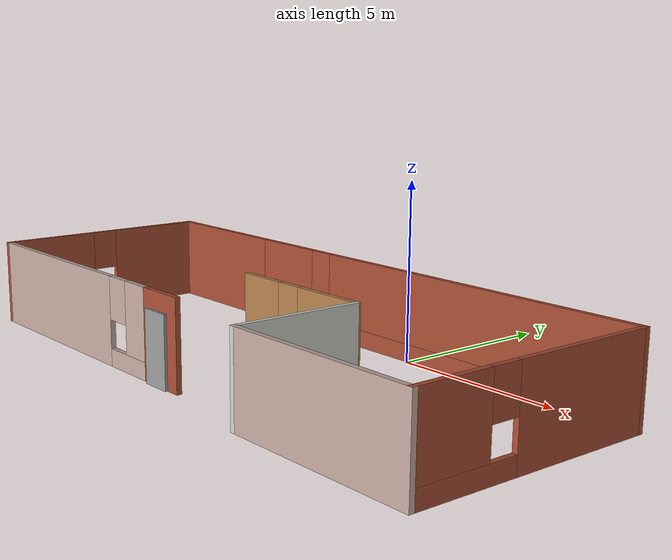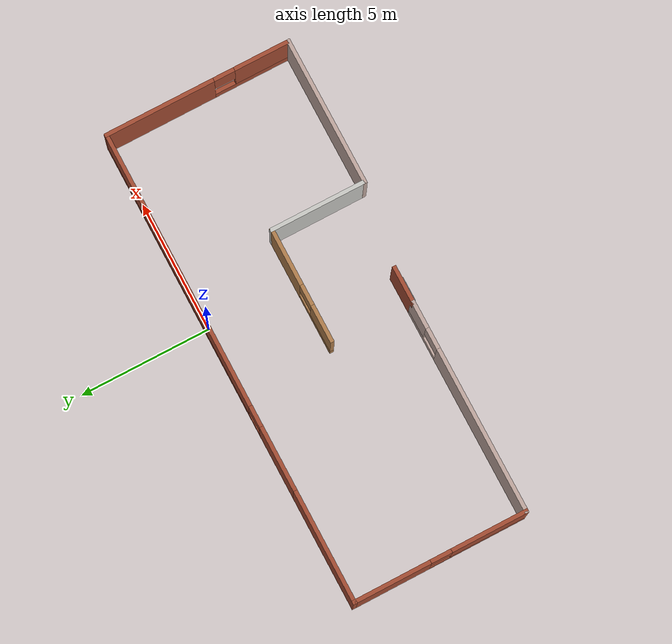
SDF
<?xml version='1.0'?>
<sdf version='1.6'>
  <model name='building'>
    <pose frame=''>-1.80267 -3.45092 0 0 -0 0</pose>
    <link name='Door_0'>
      <collision name='Door_0_Collision'>
        <geometry>
          <box>
            <size>0.9 0.17 2</size>
          </box>
        </geometry>
        <pose frame=''>0 0 1 0 -0 0</pose>
      </collision>
      <visual name='Door_0_Visual'>
        <pose frame=''>0 0 1 0 -0 0</pose>
        <geometry>
          <box>
            <size>0.9 0.17 2</size>
          </box>
        </geometry>
        <material>
          <script>
            <uri>file://media/materials/scripts/gazebo.material</uri>
            <name>Gazebo/Grey</name>
          </script>
        </material>
      </visual>
      <pose frame=''>-0.447336 -3.11363 0 0 -0 0</pose>
    </link>
    <link name='Wall_0'>
      <pose frame=''>2.17489 3.55 0 0 0 -1.2e-05</pose>
      <visual name='Wall_0_Visual_0'>
        <pose frame=''>-5.76323 0 1.25 0 -0 0</pose>
        <geometry>
          <box>
            <size>2.47354 0.15 2.5</size>
          </box>
        </geometry>
        <material>
          <script>
            <uri>file://media/materials/scripts/gazebo.material</uri>
            <name>Gazebo/Bricks</name>
          </script>
          <ambient>1 1 1 1</ambient>
        </material>
        <meta>
          <layer>0</layer>
        </meta>
      </visual>
      <collision name='Wall_0_Collision_0'>
        <geometry>
          <box>
            <size>2.47354 0.15 2.5</size>
          </box>
        </geometry>
        <pose frame=''>-5.76323 0 1.25 0 -0 0</pose>
      </collision>
      <visual name='Wall_0_Visual_1'>
        <pose frame=''>1.23677 0 0.25 0 -0 0</pose>
        <geometry>
          <box>
            <size>11.5265 0.15 0.5</size>
          </box>
        </geometry>
        <material>
          <script>
            <uri>file://media/materials/scripts/gazebo.material</uri>
            <name>Gazebo/Bricks</name>
          </script>
          <ambient>1 1 1 1</ambient>
        </material>
        <meta>
          <layer>0</layer>
        </meta>
      </visual>
      <collision name='Wall_0_Collision_1'>
        <geometry>
          <box>
            <size>11.5265 0.15 0.5</size>
          </box>
        </geometry>
        <pose frame=''>1.23677 0 0.25 0 -0 0</pose>
      </collision>
      <visual name='Wall_0_Visual_2'>
        <pose frame=''>1.63677 0 1.5 0 -0 0</pose>
        <geometry>
          <box>
            <size>10.7265 0.15 2</size>
          </box>
        </geometry>
        <material>
          <script>
            <uri>file://media/materials/scripts/gazebo.material</uri>
            <name>Gazebo/Bricks</name>
          </script>
          <ambient>1 1 1 1</ambient>
        </material>
        <meta>
          <layer>0</layer>
        </meta>
      </visual>
      <collision name='Wall_0_Collision_2'>
        <geometry>
          <box>
            <size>10.7265 0.15 2</size>
          </box>
        </geometry>
        <pose frame=''>1.63677 0 1.5 0 -0 0</pose>
      </collision>
      <visual name='Wall_0_Visual_3'>
        <pose frame=''>-4.12646 0 1.9 0 -0 0</pose>
        <geometry>
          <box>
            <size>0.8 0.15 1.2</size>
          </box>
        </geometry>
        <material>
          <script>
            <uri>file://media/materials/scripts/gazebo.material</uri>
            <name>Gazebo/Bricks</name>
          </script>
          <ambient>1 1 1 1</ambient>
        </material>
        <meta>
          <layer>0</layer>
        </meta>
      </visual>
      <collision name='Wall_0_Collision_3'>
        <geometry>
          <box>
            <size>0.8 0.15 1.2</size>
          </box>
        </geometry>
        <pose frame=''>-4.12646 0 1.9 0 -0 0</pose>
      </collision>
    </link>
    <link name='Wall_1'>
      <pose frame=''>9.09967 -8e-05 0 0 0 -1.5708</pose>
      <visual name='Wall_1_Visual_0'>
        <pose frame=''>-1.50505 0 1.25 0 -0 0</pose>
        <geometry>
          <box>
            <size>4.23991 0.15 2.5</size>
          </box>
        </geometry>
        <material>
          <script>
            <uri>file://media/materials/scripts/gazebo.material</uri>
            <name>Gazebo/Bricks</name>
          </script>
          <ambient>0.435294 0.796078 0.67451 1</ambient>
        </material>
        <meta>
          <layer>0</layer>
        </meta>
      </visual>
      <collision name='Wall_1_Collision_0'>
        <geometry>
          <box>
            <size>4.23991 0.15 2.5</size>
          </box>
        </geometry>
        <pose frame=''>-1.50505 0 1.25 0 -0 0</pose>
      </collision>
      <visual name='Wall_1_Visual_1'>
        <pose frame=''>2.11995 0 0.25 0 -0 0</pose>
        <geometry>
          <box>
            <size>3.01009 0.15 0.5</size>
          </box>
        </geometry>
        <material>
          <script>
            <uri>file://media/materials/scripts/gazebo.material</uri>
            <name>Gazebo/Bricks</name>
          </script>
          <ambient>0.435294 0.796078 0.67451 1</ambient>
        </material>
        <meta>
          <layer>0</layer>
        </meta>
      </visual>
      <collision name='Wall_1_Collision_1'>
        <geometry>
          <box>
            <size>3.01009 0.15 0.5</size>
          </box>
        </geometry>
        <pose frame=''>2.11995 0 0.25 0 -0 0</pose>
      </collision>
      <visual name='Wall_1_Visual_2'>
        <pose frame=''>2.51995 0 1.5 0 -0 0</pose>
        <geometry>
          <box>
            <size>2.21009 0.15 2</size>
          </box>
        </geometry>
        <material>
          <script>
            <uri>file://media/materials/scripts/gazebo.material</uri>
            <name>Gazebo/Bricks</name>
          </script>
          <ambient>0.435294 0.796078 0.67451 1</ambient>
        </material>
        <meta>
          <layer>0</layer>
        </meta>
      </visual>
      <collision name='Wall_1_Collision_2'>
        <geometry>
          <box>
            <size>2.21009 0.15 2</size>
          </box>
        </geometry>
        <pose frame=''>2.51995 0 1.5 0 -0 0</pose>
      </collision>
      <visual name='Wall_1_Visual_3'>
        <pose frame=''>1.01491 0 1.9 0 -0 0</pose>
        <geometry>
          <box>
            <size>0.8 0.15 1.2</size>
          </box>
        </geometry>
        <material>
          <script>
            <uri>file://media/materials/scripts/gazebo.material</uri>
            <name>Gazebo/Bricks</name>
          </script>
          <ambient>0.435294 0.796078 0.67451 1</ambient>
        </material>
        <meta>
          <layer>0</layer>
        </meta>
      </visual>
      <collision name='Wall_1_Collision_3'>
        <geometry>
          <box>
            <size>0.8 0.15 1.2</size>
          </box>
        </geometry>
        <pose frame=''>1.01491 0 1.9 0 -0 0</pose>
      </collision>
    </link>
    <link name='Wall_10'>
      <collision name='Wall_10_Collision'>
        <geometry>
          <box>
            <size>1.5 0.15 2.5</size>
          </box>
        </geometry>
        <pose frame=''>0 0 1.25 0 -0 0</pose>
      </collision>
      <visual name='Wall_10_Visual'>
        <pose frame=''>0 0 1.25 0 -0 0</pose>
        <geometry>
          <box>
            <size>1.5 0.15 2.5</size>
          </box>
        </geometry>
        <material>
          <script>
            <uri>file://media/materials/scripts/gazebo.material</uri>
            <name>Gazebo/Bricks</name>
          </script>
          <ambient>1 1 1 1</ambient>
        </material>
        <meta>
          <layer>0</layer>
        </meta>
      </visual>
      <pose frame=''>-0.324891 -3.04992 0 0 -0 0</pose>
    </link>
    <link name='Wall_2'>
      <collision name='Wall_2_Collision'>
        <geometry>
          <box>
            <size>5.75 0.15 2.5</size>
          </box>
        </geometry>
        <pose frame=''>0 0 1.25 0 -0 0</pose>
      </collision>
      <visual name='Wall_2_Visual'>
        <pose frame=''>0 0 1.25 0 -0 0</pose>
        <geometry>
          <box>
            <size>5.75 0.15 2.5</size>
          </box>
        </geometry>
        <material>
          <script>
            <uri>file://media/materials/scripts/gazebo.material</uri>
            <name>Gazebo/Grey</name>
          </script>
          <ambient>0.760784 0.662745 0.627451 1</ambient>
        </material>
        <meta>
          <layer>0</layer>
        </meta>
      </visual>
      <pose frame=''>6.29989 -3.55 0 0 -0 3.14156</pose>
    </link>
    <link name='Wall_3'>
      <collision name='Wall_3_Collision'>
        <geometry>
          <box>
            <size>3.75 0.15 2.5</size>
          </box>
        </geometry>
        <pose frame=''>0 0 1.25 0 -0 0</pose>
      </collision>
      <visual name='Wall_3_Visual'>
        <pose frame=''>0 0 1.25 0 -0 0</pose>
        <geometry>
          <box>
            <size>3.75 0.15 2.5</size>
          </box>
        </geometry>
        <material>
          <script>
            <uri>file://media/materials/scripts/gazebo.material</uri>
            <name>Gazebo/CeilingTiled</name>
          </script>
          <ambient>1 1 1 1</ambient>
        </material>
        <meta>
          <layer>0</layer>
        </meta>
      </visual>
      <pose frame=''>3.49989 -1.75 0 0 -0 1.57092</pose>
    </link>
    <link name='Wall_4'>
      <pose frame=''>1.32467 0.04992 0 0 -0 3.14159</pose>
      <visual name='Wall_4_Visual_0'>
        <pose frame=''>-1.12963 0 1.25 0 -0 0</pose>
        <geometry>
          <box>
            <size>2.24073 0.15 2.5</size>
          </box>
        </geometry>
        <material>
          <script>
            <uri>file://media/materials/scripts/gazebo.material</uri>
            <name>Gazebo/Wood</name>
          </script>
          <ambient>0.435294 0.796078 0.67451 1</ambient>
        </material>
        <meta>
          <layer>0</layer>
        </meta>
      </visual>
      <collision name='Wall_4_Collision_0'>
        <geometry>
          <box>
            <size>2.24073 0.15 2.5</size>
          </box>
        </geometry>
        <pose frame=''>-1.12963 0 1.25 0 -0 0</pose>
      </collision>
      <visual name='Wall_4_Visual_1'>
        <pose frame=''>1.12037 0 0.25 0 -0 0</pose>
        <geometry>
          <box>
            <size>2.25927 0.15 0.5</size>
          </box>
        </geometry>
        <material>
          <script>
            <uri>file://media/materials/scripts/gazebo.material</uri>
            <name>Gazebo/Wood</name>
          </script>
          <ambient>0.435294 0.796078 0.67451 1</ambient>
        </material>
        <meta>
          <layer>0</layer>
        </meta>
      </visual>
      <collision name='Wall_4_Collision_1'>
        <geometry>
          <box>
            <size>2.25927 0.15 0.5</size>
          </box>
        </geometry>
        <pose frame=''>1.12037 0 0.25 0 -0 0</pose>
      </collision>
      <visual name='Wall_4_Visual_2'>
        <pose frame=''>1.52036 0 1.5 0 -0 0</pose>
        <geometry>
          <box>
            <size>1.45927 0.15 2</size>
          </box>
        </geometry>
        <material>
          <script>
            <uri>file://media/materials/scripts/gazebo.material</uri>
            <name>Gazebo/Wood</name>
          </script>
          <ambient>0.435294 0.796078 0.67451 1</ambient>
        </material>
        <meta>
          <layer>0</layer>
        </meta>
      </visual>
      <collision name='Wall_4_Collision_2'>
        <geometry>
          <box>
            <size>1.45927 0.15 2</size>
          </box>
        </geometry>
        <pose frame=''>1.52036 0 1.5 0 -0 0</pose>
      </collision>
      <visual name='Wall_4_Visual_3'>
        <pose frame=''>0.39073 0 1.9 0 -0 0</pose>
        <geometry>
          <box>
            <size>0.8 0.15 1.2</size>
          </box>
        </geometry>
        <material>
          <script>
            <uri>file://media/materials/scripts/gazebo.material</uri>
            <name>Gazebo/Wood</name>
          </script>
          <ambient>0.435294 0.796078 0.67451 1</ambient>
        </material>
        <meta>
          <layer>0</layer>
        </meta>
      </visual>
      <collision name='Wall_4_Collision_3'>
        <geometry>
          <box>
            <size>0.8 0.15 1.2</size>
          </box>
        </geometry>
        <pose frame=''>0.39073 0 1.9 0 -0 0</pose>
      </collision>
    </link>
    <link name='Wall_6'>
      <collision name='Wall_6_Collision'>
        <geometry>
          <box>
            <size>4.5 0.15 2.5</size>
          </box>
        </geometry>
        <pose frame=''>0 0 1.25 0 -0 0</pose>
      </collision>
      <visual name='Wall_6_Visual'>
        <pose frame=''>0 0 1.25 0 -0 0</pose>
        <geometry>
          <box>
            <size>4.5 0.15 2.5</size>
          </box>
        </geometry>
        <material>
          <script>
            <uri>file://media/materials/scripts/gazebo.material</uri>
            <name>Gazebo/Bricks</name>
          </script>
          <ambient>1 1 1 1</ambient>
        </material>
        <meta>
          <layer>0</layer>
        </meta>
      </visual>
      <pose frame=''>-6.92489 3.55008 0 0 -0 3.14159</pose>
    </link>
    <link name='Wall_7'>
      <pose frame=''>-9.09989 0.250081 0 0 0 -1.5708</pose>
      <visual name='Wall_7_Visual_0'>
        <pose frame=''>-1.87594 0 1.25 0 -0 0</pose>
        <geometry>
          <box>
            <size>2.99811 0.15 2.5</size>
          </box>
        </geometry>
        <material>
          <script>
            <uri>file://media/materials/scripts/gazebo.material</uri>
            <name>Gazebo/Bricks</name>
          </script>
          <ambient>1 1 1 1</ambient>
        </material>
        <meta>
          <layer>0</layer>
        </meta>
      </visual>
      <collision name='Wall_7_Collision_0'>
        <geometry>
          <box>
            <size>2.99811 0.15 2.5</size>
          </box>
        </geometry>
        <pose frame=''>-1.87594 0 1.25 0 -0 0</pose>
      </collision>
      <visual name='Wall_7_Visual_1'>
        <pose frame=''>1.49906 0 0.25 0 -0 0</pose>
        <geometry>
          <box>
            <size>3.75189 0.15 0.5</size>
          </box>
        </geometry>
        <material>
          <script>
            <uri>file://media/materials/scripts/gazebo.material</uri>
            <name>Gazebo/Bricks</name>
          </script>
          <ambient>1 1 1 1</ambient>
        </material>
        <meta>
          <layer>0</layer>
        </meta>
      </visual>
      <collision name='Wall_7_Collision_1'>
        <geometry>
          <box>
            <size>3.75189 0.15 0.5</size>
          </box>
        </geometry>
        <pose frame=''>1.49906 0 0.25 0 -0 0</pose>
      </collision>
      <visual name='Wall_7_Visual_2'>
        <pose frame=''>1.89906 0 1.5 0 -0 0</pose>
        <geometry>
          <box>
            <size>2.95189 0.15 2</size>
          </box>
        </geometry>
        <material>
          <script>
            <uri>file://media/materials/scripts/gazebo.material</uri>
            <name>Gazebo/Bricks</name>
          </script>
          <ambient>1 1 1 1</ambient>
        </material>
        <meta>
          <layer>0</layer>
        </meta>
      </visual>
      <collision name='Wall_7_Collision_2'>
        <geometry>
          <box>
            <size>2.95189 0.15 2</size>
          </box>
        </geometry>
        <pose frame=''>1.89906 0 1.5 0 -0 0</pose>
      </collision>
      <visual name='Wall_7_Visual_3'>
        <pose frame=''>0.023112 0 1.9 0 -0 0</pose>
        <geometry>
          <box>
            <size>0.8 0.15 1.2</size>
          </box>
        </geometry>
        <material>
          <script>
            <uri>file://media/materials/scripts/gazebo.material</uri>
            <name>Gazebo/Bricks</name>
          </script>
          <ambient>1 1 1 1</ambient>
        </material>
        <meta>
          <layer>0</layer>
        </meta>
      </visual>
      <collision name='Wall_7_Collision_3'>
        <geometry>
          <box>
            <size>0.8 0.15 1.2</size>
          </box>
        </geometry>
        <pose frame=''>0.023112 0 1.9 0 -0 0</pose>
      </collision>
    </link>
    <link name='Wall_8'>
      <pose frame=''>-5.04989 -3.04992 0 0 -0 0</pose>
      <visual name='Wall_8_Visual_0'>
        <pose frame=''>-0.940666 0 1.25 0 -0 0</pose>
        <geometry>
          <box>
            <size>6.36867 0.15 2.5</size>
          </box>
        </geometry>
        <material>
          <script>
            <uri>file://media/materials/scripts/gazebo.material</uri>
            <name>Gazebo/Grey</name>
          </script>
          <ambient>0.760784 0.662745 0.627451 1</ambient>
        </material>
        <meta>
          <layer>0</layer>
        </meta>
      </visual>
      <collision name='Wall_8_Collision_0'>
        <geometry>
          <box>
            <size>6.36867 0.15 2.5</size>
          </box>
        </geometry>
        <pose frame=''>-0.940666 0 1.25 0 -0 0</pose>
      </collision>
      <visual name='Wall_8_Visual_1'>
        <pose frame=''>3.18433 0 0.25 0 -0 0</pose>
        <geometry>
          <box>
            <size>1.88133 0.15 0.5</size>
          </box>
        </geometry>
        <material>
          <script>
            <uri>file://media/materials/scripts/gazebo.material</uri>
            <name>Gazebo/Grey</name>
          </script>
          <ambient>0.760784 0.662745 0.627451 1</ambient>
        </material>
        <meta>
          <layer>0</layer>
        </meta>
      </visual>
      <collision name='Wall_8_Collision_1'>
        <geometry>
          <box>
            <size>1.88133 0.15 0.5</size>
          </box>
        </geometry>
        <pose frame=''>3.18433 0 0.25 0 -0 0</pose>
      </collision>
      <visual name='Wall_8_Visual_2'>
        <pose frame=''>3.58433 0 1.5 0 -0 0</pose>
        <geometry>
          <box>
            <size>1.08133 0.15 2</size>
          </box>
        </geometry>
        <material>
          <script>
            <uri>file://media/materials/scripts/gazebo.material</uri>
            <name>Gazebo/Grey</name>
          </script>
          <ambient>0.760784 0.662745 0.627451 1</ambient>
        </material>
        <meta>
          <layer>0</layer>
        </meta>
      </visual>
      <collision name='Wall_8_Collision_2'>
        <geometry>
          <box>
            <size>1.08133 0.15 2</size>
          </box>
        </geometry>
        <pose frame=''>3.58433 0 1.5 0 -0 0</pose>
      </collision>
      <visual name='Wall_8_Visual_3'>
        <pose frame=''>2.64367 0 1.9 0 -0 0</pose>
        <geometry>
          <box>
            <size>0.8 0.15 1.2</size>
          </box>
        </geometry>
        <material>
          <script>
            <uri>file://media/materials/scripts/gazebo.material</uri>
            <name>Gazebo/Grey</name>
          </script>
          <ambient>0.760784 0.662745 0.627451 1</ambient>
        </material>
        <meta>
          <layer>0</layer>
        </meta>
      </visual>
      <collision name='Wall_8_Collision_3'>
        <geometry>
          <box>
            <size>0.8 0.15 1.2</size>
          </box>
        </geometry>
        <pose frame=''>2.64367 0 1.9 0 -0 0</pose>
      </collision>
    </link>
    <static>1</static>
  </model>
</sdf>
